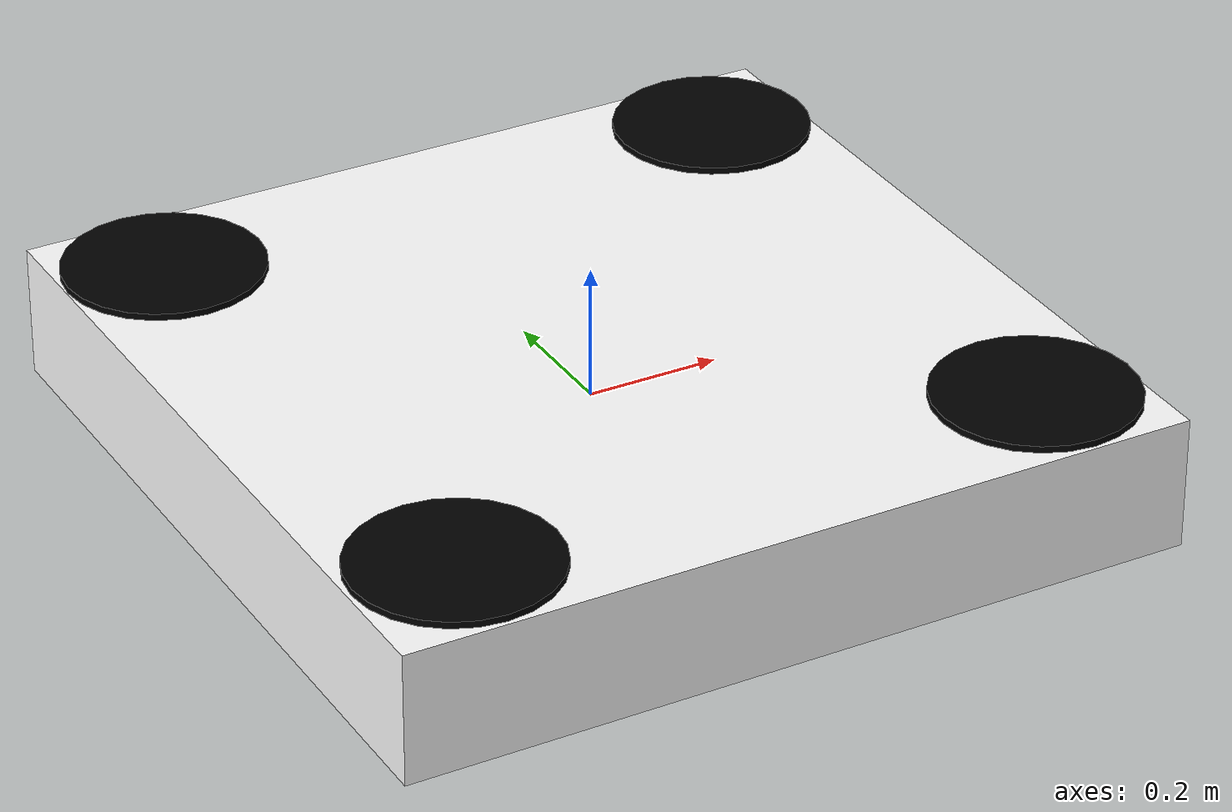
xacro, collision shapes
<?xml version="1.0"?>
<robot name="drone" xmlns:xacro="http://www.ros.org/wiki/xacro">

    <!-- Material Colors -->
    <material name="white"><color rgba="1 1 1 1" /></material>
    <material name="black"><color rgba="0 0 0 1" /></material>
    <material name="blue"><color rgba="0 0 1 1" /></material>
    <material name="grey"><color rgba="0.5 0.5 0.5 1" /></material>

    <!-- Base Link -->
    <link name="base_link">
        <visual>
            <geometry>
                <mesh filename="package://robot_description/meshes/WholeDrone.STL" scale="0.008 0.008 0.008"/>
            </geometry>
            <origin xyz="0.56 -0.8275 -0.425" rpy="${pi/2} 0 ${pi}" />
            <material name="white" />
        </visual>
        <collision>
            <geometry>
                <box size="1.2 1.2 0.2" />
            </geometry>
            <origin xyz="0 0 0" rpy="0 0 0" />
        </collision>
        <inertial>
            <origin xyz="0 0 0" rpy="0 0 0" />
            <mass value="1.5"/>
            <inertia ixx="0.0201" ixy="0" ixz="0"
                    iyy="0.0293" iyz="0"
                    izz="0.0486"/>
        </inertial>
    </link>

    <!-- Propeller Macro and Links (unchanged) -->
    <xacro:macro name="propeller_link" params="prefix">
        <link name="${prefix}_propeller_link">
            <visual>
                <geometry>
                    <mesh filename="package://robot_description/meshes/PropellerForRos.STL" scale="0.008 0.008 0.008"/>
                </geometry>
                <origin xyz="-0.269 0.3874 -0.2" rpy="${pi/2} 0 0" />
                <material name="black" />
            </visual>
            <collision>
                <geometry>
                    <cylinder radius="0.15" length="0.02"/>
                </geometry>
                <origin xyz="0 0 0" rpy="0 0 0" />
            </collision>
            <inertial>
                <origin xyz="0 0 0" rpy="0 0 0"/>
                <mass value="0.1"/>
                <inertia ixx="0.0001" ixy="0" ixz="0"
                        iyy="0.0001" iyz="0"
                        izz="0.0002"/>
            </inertial>
        </link>
    </xacro:macro>

    <!-- Propeller Links -->
    <xacro:propeller_link prefix="front_right" />
    <xacro:propeller_link prefix="front_left" />
    <xacro:propeller_link prefix="back_right" />
    <xacro:propeller_link prefix="back_left" />

    <!-- Joints (unchanged) -->
    <joint name="base_front_right_propeller_joint" type="continuous">
        <parent link="base_link" />
        <child link="front_right_propeller_link" />
        <origin xyz="-0.444 -0.444 0.1" rpy="0 0 0" />
        <axis xyz="0 0 1" />
        <dynamics damping="0.01" friction="0.01"/>
    </joint>

    <joint name="base_front_left_propeller_joint" type="continuous">
        <parent link="base_link" />
        <child link="front_left_propeller_link" />
        <origin xyz="0.451 -0.445 0.1" rpy="0 0 0" />
        <axis xyz="0 0 1" />
        <dynamics damping="0.01" friction="0.01"/>
    </joint>

    <joint name="base_back_right_propeller_joint" type="continuous">
        <parent link="base_link" />
        <child link="back_right_propeller_link" />
        <origin xyz="-0.4482 0.455 0.1" rpy="0 0 0" />
        <axis xyz="0 0 1" />
        <dynamics damping="0.01" friction="0.01"/>
    </joint>

    <joint name="base_back_left_propeller_joint" type="continuous">
        <parent link="base_link" />
        <child link="back_left_propeller_link" />
        <origin xyz="0.457 0.457 0.1" rpy="0 0 0" />
        <axis xyz="0 0 1" />
        <dynamics damping="0.01" friction="0.01"/>
    </joint>

</robot>
